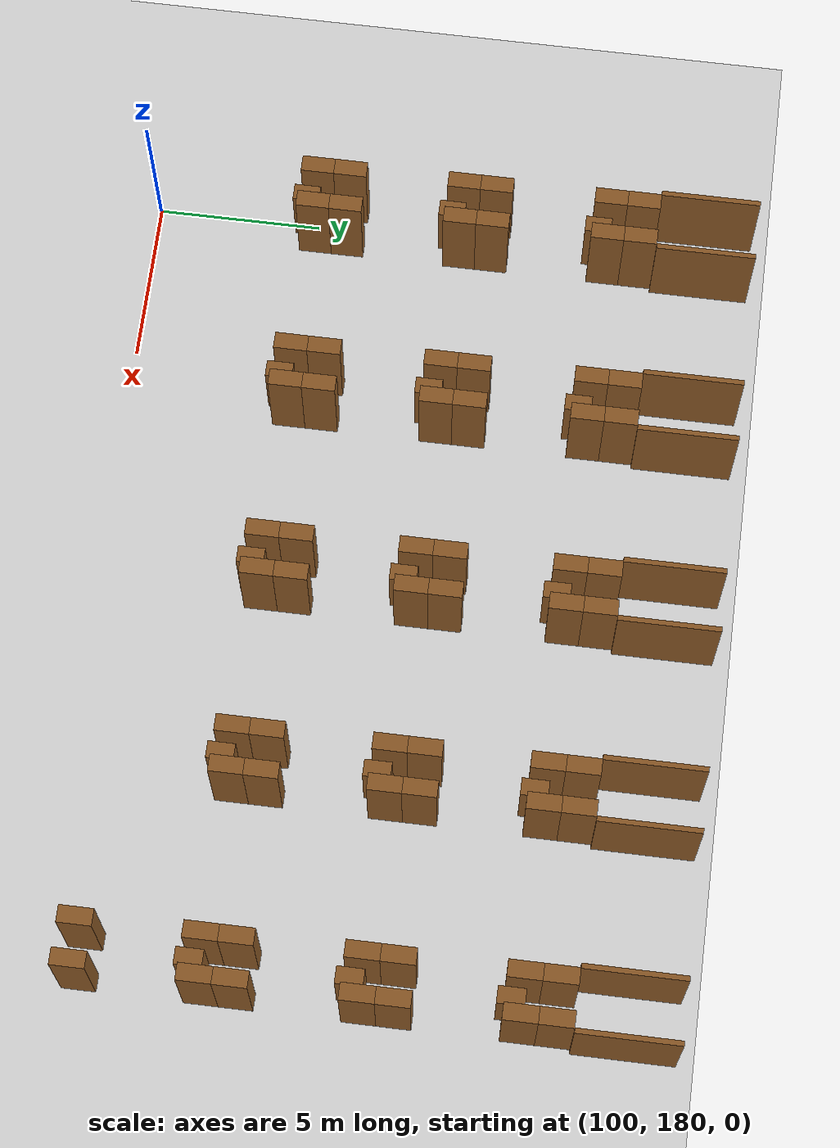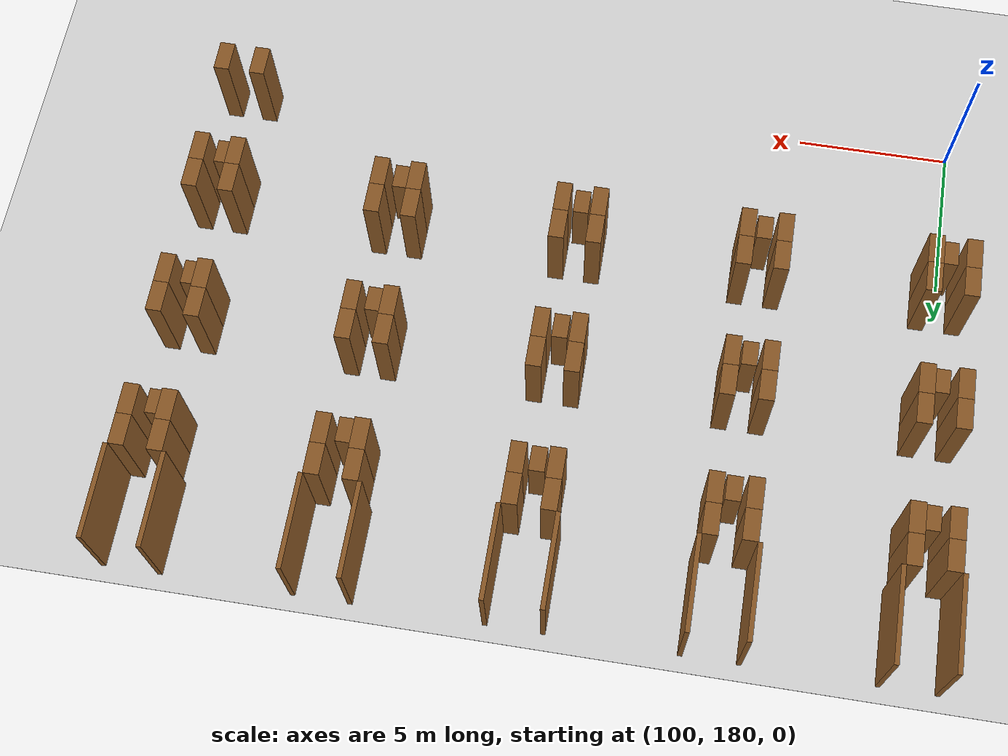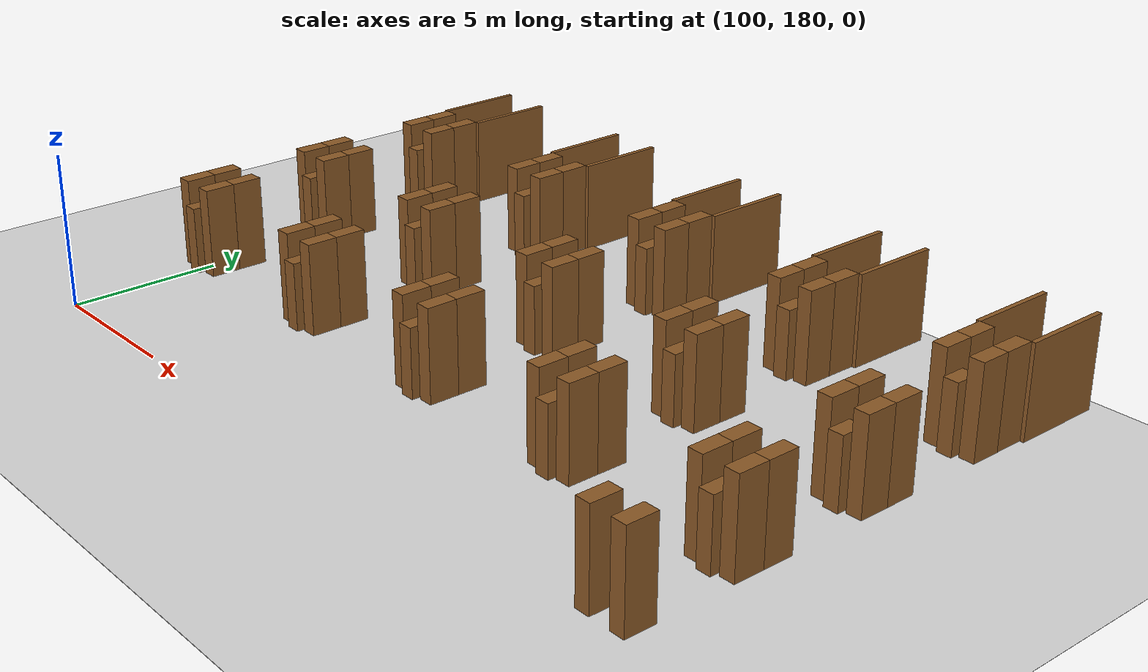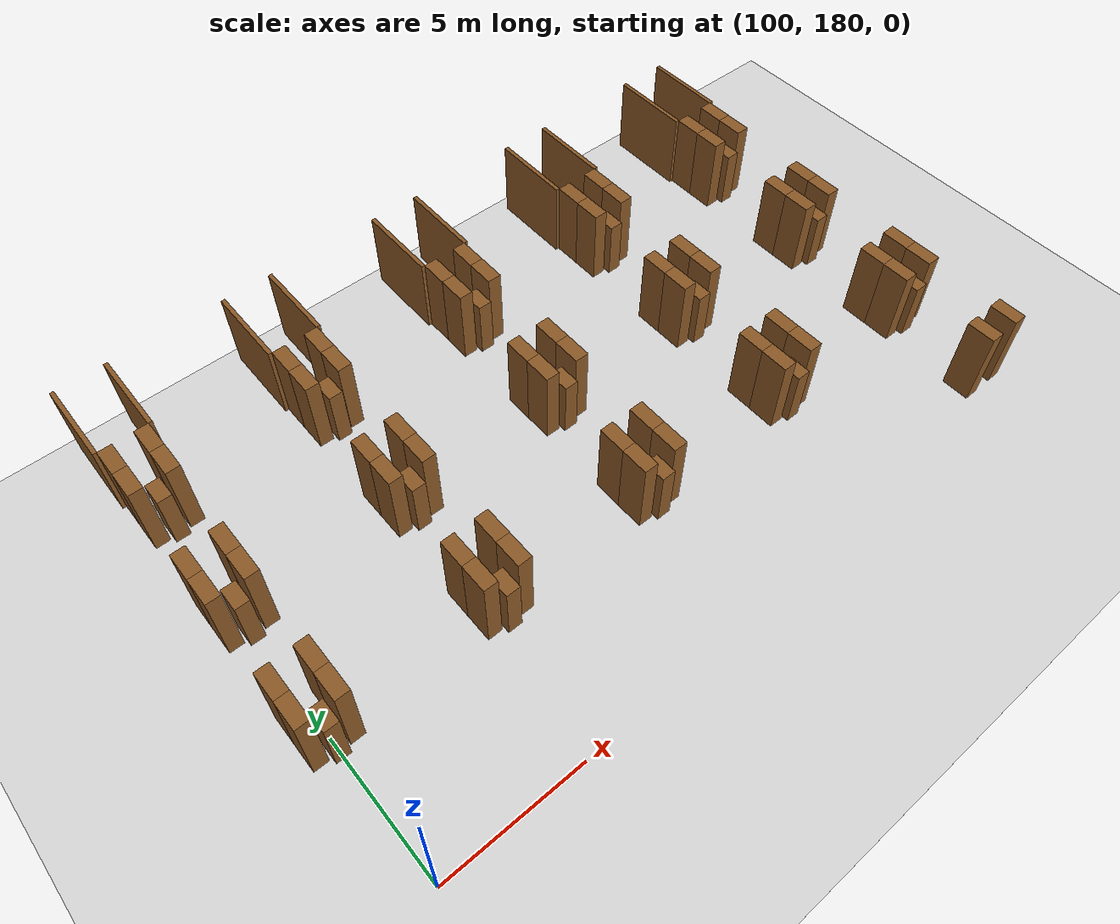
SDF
<sdf version="1.9">
 <world name="realistic_warehouse_150x200m">
  <model name="ground_plane">
   <static>true</static>
   <pose>68.5 102.0 0 0 0 0</pose>
   <link name="ground_link">
    <visual name="ground_visual">
     <geometry><box><size>127.0 194.0 0.01</size></box></geometry>
     <material><ambient>0.85 0.85 0.85 1.0</ambient><diffuse>0.85 0.85 0.85 1.0</diffuse></material>
    </visual>
    <collision name="ground_visual_collision">
     <geometry><box><size>127.0 194.0 0.01</size></box></geometry>
    </collision>
    <collision name="ground_collision">
     <geometry><plane><normal>0 0 1</normal><size>127.0 194.0</size></plane></geometry>
    </collision>
   </link>
  </model>
  <model name="rack_Zone_C_A0_S5_483">
   <static>true</static>
   <pose>99.4 185.0 1.5 0 0 0</pose>
   <link name="rack_Zone_C_A0_S5_483_link">
    <visual name="rack_Zone_C_A0_S5_483_vis">
     <geometry><box><size>0.5 1.0 3.0</size></box></geometry>
     <material><ambient>0.55 0.35 0.15 1.0</ambient><diffuse>0.55 0.35 0.15 1.0</diffuse></material>
    </visual>
    <collision name="rack_Zone_C_A0_S5_483_vis_collision">
     <geometry><box><size>0.5 1.0 3.0</size></box></geometry>
    </collision>
   </link>
  </model>
  <model name="rack_Zone_C_A0_S5_484">
   <static>true</static>
   <pose>99.4 186.0 1.5 0 0 0</pose>
   <link name="rack_Zone_C_A0_S5_484_link">
    <visual name="rack_Zone_C_A0_S5_484_vis">
     <geometry><box><size>0.5 1.0 3.0</size></box></geometry>
     <material><ambient>0.55 0.35 0.15 1.0</ambient><diffuse>0.55 0.35 0.15 1.0</diffuse></material>
    </visual>
    <collision name="rack_Zone_C_A0_S5_484_vis_collision">
     <geometry><box><size>0.5 1.0 3.0</size></box></geometry>
    </collision>
   </link>
  </model>
  <model name="rack_Zone_C_A0_S5_485">
   <static>true</static>
   <pose>100.6 185.0 1.5 0 0 0</pose>
   <link name="rack_Zone_C_A0_S5_485_link">
    <visual name="rack_Zone_C_A0_S5_485_vis">
     <geometry><box><size>0.5 1.0 3.0</size></box></geometry>
     <material><ambient>0.55 0.35 0.15 1.0</ambient><diffuse>0.55 0.35 0.15 1.0</diffuse></material>
    </visual>
    <collision name="rack_Zone_C_A0_S5_485_vis_collision">
     <geometry><box><size>0.5 1.0 3.0</size></box></geometry>
    </collision>
   </link>
  </model>
  <model name="rack_Zone_C_A0_S5_486">
   <static>true</static>
   <pose>100.6 186.0 1.5 0 0 0</pose>
   <link name="rack_Zone_C_A0_S5_486_link">
    <visual name="rack_Zone_C_A0_S5_486_vis">
     <geometry><box><size>0.5 1.0 3.0</size></box></geometry>
     <material><ambient>0.55 0.35 0.15 1.0</ambient><diffuse>0.55 0.35 0.15 1.0</diffuse></material>
    </visual>
    <collision name="rack_Zone_C_A0_S5_486_vis_collision">
     <geometry><box><size>0.5 1.0 3.0</size></box></geometry>
    </collision>
   </link>
  </model>
  <model name="rack_Zone_C_A0_S5_487">
   <static>true</static>
   <pose>100.0 184.7 1.125 0 0 0</pose>
   <link name="rack_Zone_C_A0_S5_487_link">
    <visual name="rack_Zone_C_A0_S5_487_vis">
     <geometry><box><size>0.5 0.8 2.25</size></box></geometry>
     <material><ambient>0.55 0.35 0.15 1.0</ambient><diffuse>0.55 0.35 0.15 1.0</diffuse></material>
    </visual>
    <collision name="rack_Zone_C_A0_S5_487_vis_collision">
     <geometry><box><size>0.5 0.8 2.25</size></box></geometry>
    </collision>
   </link>
  </model>
  <model name="rack_Zone_C_A0_S6_488">
   <static>true</static>
   <pose>99.4 189.5 1.5 0 0 0</pose>
   <link name="rack_Zone_C_A0_S6_488_link">
    <visual name="rack_Zone_C_A0_S6_488_vis">
     <geometry><box><size>0.5 1.0 3.0</size></box></geometry>
     <material><ambient>0.55 0.35 0.15 1.0</ambient><diffuse>0.55 0.35 0.15 1.0</diffuse></material>
    </visual>
    <collision name="rack_Zone_C_A0_S6_488_vis_collision">
     <geometry><box><size>0.5 1.0 3.0</size></box></geometry>
    </collision>
   </link>
  </model>
  <model name="rack_Zone_C_A0_S6_489">
   <static>true</static>
   <pose>99.4 190.5 1.5 0 0 0</pose>
   <link name="rack_Zone_C_A0_S6_489_link">
    <visual name="rack_Zone_C_A0_S6_489_vis">
     <geometry><box><size>0.5 1.0 3.0</size></box></geometry>
     <material><ambient>0.55 0.35 0.15 1.0</ambient><diffuse>0.55 0.35 0.15 1.0</diffuse></material>
    </visual>
    <collision name="rack_Zone_C_A0_S6_489_vis_collision">
     <geometry><box><size>0.5 1.0 3.0</size></box></geometry>
    </collision>
   </link>
  </model>
  <model name="rack_Zone_C_A0_S6_490">
   <static>true</static>
   <pose>100.6 189.5 1.5 0 0 0</pose>
   <link name="rack_Zone_C_A0_S6_490_link">
    <visual name="rack_Zone_C_A0_S6_490_vis">
     <geometry><box><size>0.5 1.0 3.0</size></box></geometry>
     <material><ambient>0.55 0.35 0.15 1.0</ambient><diffuse>0.55 0.35 0.15 1.0</diffuse></material>
    </visual>
    <collision name="rack_Zone_C_A0_S6_490_vis_collision">
     <geometry><box><size>0.5 1.0 3.0</size></box></geometry>
    </collision>
   </link>
  </model>
  <model name="rack_Zone_C_A0_S6_491">
   <static>true</static>
   <pose>100.6 190.5 1.5 0 0 0</pose>
   <link name="rack_Zone_C_A0_S6_491_link">
    <visual name="rack_Zone_C_A0_S6_491_vis">
     <geometry><box><size>0.5 1.0 3.0</size></box></geometry>
     <material><ambient>0.55 0.35 0.15 1.0</ambient><diffuse>0.55 0.35 0.15 1.0</diffuse></material>
    </visual>
    <collision name="rack_Zone_C_A0_S6_491_vis_collision">
     <geometry><box><size>0.5 1.0 3.0</size></box></geometry>
    </collision>
   </link>
  </model>
  <model name="rack_Zone_C_A0_S6_492">
   <static>true</static>
   <pose>100.0 189.2 1.125 0 0 0</pose>
   <link name="rack_Zone_C_A0_S6_492_link">
    <visual name="rack_Zone_C_A0_S6_492_vis">
     <geometry><box><size>0.5 0.8 2.25</size></box></geometry>
     <material><ambient>0.55 0.35 0.15 1.0</ambient><diffuse>0.55 0.35 0.15 1.0</diffuse></material>
    </visual>
    <collision name="rack_Zone_C_A0_S6_492_vis_collision">
     <geometry><box><size>0.5 0.8 2.25</size></box></geometry>
    </collision>
   </link>
  </model>
  <model name="rack_Zone_C_A0_S7_493">
   <static>true</static>
   <pose>99.4 194.0 1.5 0 0 0</pose>
   <link name="rack_Zone_C_A0_S7_493_link">
    <visual name="rack_Zone_C_A0_S7_493_vis">
     <geometry><box><size>0.5 1.0 3.0</size></box></geometry>
     <material><ambient>0.55 0.35 0.15 1.0</ambient><diffuse>0.55 0.35 0.15 1.0</diffuse></material>
    </visual>
    <collision name="rack_Zone_C_A0_S7_493_vis_collision">
     <geometry><box><size>0.5 1.0 3.0</size></box></geometry>
    </collision>
   </link>
  </model>
  <model name="rack_Zone_C_A0_S7_494">
   <static>true</static>
   <pose>99.4 195.0 1.5 0 0 0</pose>
   <link name="rack_Zone_C_A0_S7_494_link">
    <visual name="rack_Zone_C_A0_S7_494_vis">
     <geometry><box><size>0.5 1.0 3.0</size></box></geometry>
     <material><ambient>0.55 0.35 0.15 1.0</ambient><diffuse>0.55 0.35 0.15 1.0</diffuse></material>
    </visual>
    <collision name="rack_Zone_C_A0_S7_494_vis_collision">
     <geometry><box><size>0.5 1.0 3.0</size></box></geometry>
    </collision>
   </link>
  </model>
  <model name="rack_Zone_C_A0_S7_495">
   <static>true</static>
   <pose>100.6 194.0 1.5 0 0 0</pose>
   <link name="rack_Zone_C_A0_S7_495_link">
    <visual name="rack_Zone_C_A0_S7_495_vis">
     <geometry><box><size>0.5 1.0 3.0</size></box></geometry>
     <material><ambient>0.55 0.35 0.15 1.0</ambient><diffuse>0.55 0.35 0.15 1.0</diffuse></material>
    </visual>
    <collision name="rack_Zone_C_A0_S7_495_vis_collision">
     <geometry><box><size>0.5 1.0 3.0</size></box></geometry>
    </collision>
   </link>
  </model>
  <model name="rack_Zone_C_A0_S7_496">
   <static>true</static>
   <pose>100.6 195.0 1.5 0 0 0</pose>
   <link name="rack_Zone_C_A0_S7_496_link">
    <visual name="rack_Zone_C_A0_S7_496_vis">
     <geometry><box><size>0.5 1.0 3.0</size></box></geometry>
     <material><ambient>0.55 0.35 0.15 1.0</ambient><diffuse>0.55 0.35 0.15 1.0</diffuse></material>
    </visual>
    <collision name="rack_Zone_C_A0_S7_496_vis_collision">
     <geometry><box><size>0.5 1.0 3.0</size></box></geometry>
    </collision>
   </link>
  </model>
  <model name="rack_Zone_C_A0_S7_497">
   <static>true</static>
   <pose>100.0 193.7 1.125 0 0 0</pose>
   <link name="rack_Zone_C_A0_S7_497_link">
    <visual name="rack_Zone_C_A0_S7_497_vis">
     <geometry><box><size>0.5 0.8 2.25</size></box></geometry>
     <material><ambient>0.55 0.35 0.15 1.0</ambient><diffuse>0.55 0.35 0.15 1.0</diffuse></material>
    </visual>
    <collision name="rack_Zone_C_A0_S7_497_vis_collision">
     <geometry><box><size>0.5 0.8 2.25</size></box></geometry>
    </collision>
   </link>
  </model>
  <model name="aisle_L_Zone_C_A0_exit_498">
   <static>true</static>
   <pose>99.1 197.0 1.5 0 0 0</pose>
   <link name="aisle_L_Zone_C_A0_exit_498_link">
    <visual name="aisle_L_Zone_C_A0_exit_498_vis">
     <geometry><box><size>0.15 3.0 3.0</size></box></geometry>
     <material><ambient>0.55 0.35 0.15 1.0</ambient><diffuse>0.55 0.35 0.15 1.0</diffuse></material>
    </visual>
    <collision name="aisle_L_Zone_C_A0_exit_498_vis_collision">
     <geometry><box><size>0.15 3.0 3.0</size></box></geometry>
    </collision>
   </link>
  </model>
  <model name="aisle_R_Zone_C_A0_exit_499">
   <static>true</static>
   <pose>100.9 197.0 1.5 0 0 0</pose>
   <link name="aisle_R_Zone_C_A0_exit_499_link">
    <visual name="aisle_R_Zone_C_A0_exit_499_vis">
     <geometry><box><size>0.15 3.0 3.0</size></box></geometry>
     <material><ambient>0.55 0.35 0.15 1.0</ambient><diffuse>0.55 0.35 0.15 1.0</diffuse></material>
    </visual>
    <collision name="aisle_R_Zone_C_A0_exit_499_vis_collision">
     <geometry><box><size>0.15 3.0 3.0</size></box></geometry>
    </collision>
   </link>
  </model>
  <model name="rack_Zone_C_A1_S5_527">
   <static>true</static>
   <pose>105.4 185.0 1.5 0 0 0</pose>
   <link name="rack_Zone_C_A1_S5_527_link">
    <visual name="rack_Zone_C_A1_S5_527_vis">
     <geometry><box><size>0.5 1.0 3.0</size></box></geometry>
     <material><ambient>0.55 0.35 0.15 1.0</ambient><diffuse>0.55 0.35 0.15 1.0</diffuse></material>
    </visual>
    <collision name="rack_Zone_C_A1_S5_527_vis_collision">
     <geometry><box><size>0.5 1.0 3.0</size></box></geometry>
    </collision>
   </link>
  </model>
  <model name="rack_Zone_C_A1_S5_528">
   <static>true</static>
   <pose>105.4 186.0 1.5 0 0 0</pose>
   <link name="rack_Zone_C_A1_S5_528_link">
    <visual name="rack_Zone_C_A1_S5_528_vis">
     <geometry><box><size>0.5 1.0 3.0</size></box></geometry>
     <material><ambient>0.55 0.35 0.15 1.0</ambient><diffuse>0.55 0.35 0.15 1.0</diffuse></material>
    </visual>
    <collision name="rack_Zone_C_A1_S5_528_vis_collision">
     <geometry><box><size>0.5 1.0 3.0</size></box></geometry>
    </collision>
   </link>
  </model>
  <model name="rack_Zone_C_A1_S5_529">
   <static>true</static>
   <pose>106.6 185.0 1.5 0 0 0</pose>
   <link name="rack_Zone_C_A1_S5_529_link">
    <visual name="rack_Zone_C_A1_S5_529_vis">
     <geometry><box><size>0.5 1.0 3.0</size></box></geometry>
     <material><ambient>0.55 0.35 0.15 1.0</ambient><diffuse>0.55 0.35 0.15 1.0</diffuse></material>
    </visual>
    <collision name="rack_Zone_C_A1_S5_529_vis_collision">
     <geometry><box><size>0.5 1.0 3.0</size></box></geometry>
    </collision>
   </link>
  </model>
  <model name="rack_Zone_C_A1_S5_530">
   <static>true</static>
   <pose>106.6 186.0 1.5 0 0 0</pose>
   <link name="rack_Zone_C_A1_S5_530_link">
    <visual name="rack_Zone_C_A1_S5_530_vis">
     <geometry><box><size>0.5 1.0 3.0</size></box></geometry>
     <material><ambient>0.55 0.35 0.15 1.0</ambient><diffuse>0.55 0.35 0.15 1.0</diffuse></material>
    </visual>
    <collision name="rack_Zone_C_A1_S5_530_vis_collision">
     <geometry><box><size>0.5 1.0 3.0</size></box></geometry>
    </collision>
   </link>
  </model>
  <model name="rack_Zone_C_A1_S5_531">
   <static>true</static>
   <pose>106.0 184.7 1.125 0 0 0</pose>
   <link name="rack_Zone_C_A1_S5_531_link">
    <visual name="rack_Zone_C_A1_S5_531_vis">
     <geometry><box><size>0.5 0.8 2.25</size></box></geometry>
     <material><ambient>0.55 0.35 0.15 1.0</ambient><diffuse>0.55 0.35 0.15 1.0</diffuse></material>
    </visual>
    <collision name="rack_Zone_C_A1_S5_531_vis_collision">
     <geometry><box><size>0.5 0.8 2.25</size></box></geometry>
    </collision>
   </link>
  </model>
  <model name="rack_Zone_C_A1_S6_532">
   <static>true</static>
   <pose>105.4 189.5 1.5 0 0 0</pose>
   <link name="rack_Zone_C_A1_S6_532_link">
    <visual name="rack_Zone_C_A1_S6_532_vis">
     <geometry><box><size>0.5 1.0 3.0</size></box></geometry>
     <material><ambient>0.55 0.35 0.15 1.0</ambient><diffuse>0.55 0.35 0.15 1.0</diffuse></material>
    </visual>
    <collision name="rack_Zone_C_A1_S6_532_vis_collision">
     <geometry><box><size>0.5 1.0 3.0</size></box></geometry>
    </collision>
   </link>
  </model>
  <model name="rack_Zone_C_A1_S6_533">
   <static>true</static>
   <pose>105.4 190.5 1.5 0 0 0</pose>
   <link name="rack_Zone_C_A1_S6_533_link">
    <visual name="rack_Zone_C_A1_S6_533_vis">
     <geometry><box><size>0.5 1.0 3.0</size></box></geometry>
     <material><ambient>0.55 0.35 0.15 1.0</ambient><diffuse>0.55 0.35 0.15 1.0</diffuse></material>
    </visual>
    <collision name="rack_Zone_C_A1_S6_533_vis_collision">
     <geometry><box><size>0.5 1.0 3.0</size></box></geometry>
    </collision>
   </link>
  </model>
  <model name="rack_Zone_C_A1_S6_534">
   <static>true</static>
   <pose>106.6 189.5 1.5 0 0 0</pose>
   <link name="rack_Zone_C_A1_S6_534_link">
    <visual name="rack_Zone_C_A1_S6_534_vis">
     <geometry><box><size>0.5 1.0 3.0</size></box></geometry>
     <material><ambient>0.55 0.35 0.15 1.0</ambient><diffuse>0.55 0.35 0.15 1.0</diffuse></material>
    </visual>
    <collision name="rack_Zone_C_A1_S6_534_vis_collision">
     <geometry><box><size>0.5 1.0 3.0</size></box></geometry>
    </collision>
   </link>
  </model>
  <model name="rack_Zone_C_A1_S6_535">
   <static>true</static>
   <pose>106.6 190.5 1.5 0 0 0</pose>
   <link name="rack_Zone_C_A1_S6_535_link">
    <visual name="rack_Zone_C_A1_S6_535_vis">
     <geometry><box><size>0.5 1.0 3.0</size></box></geometry>
     <material><ambient>0.55 0.35 0.15 1.0</ambient><diffuse>0.55 0.35 0.15 1.0</diffuse></material>
    </visual>
    <collision name="rack_Zone_C_A1_S6_535_vis_collision">
     <geometry><box><size>0.5 1.0 3.0</size></box></geometry>
    </collision>
   </link>
  </model>
  <model name="rack_Zone_C_A1_S6_536">
   <static>true</static>
   <pose>106.0 189.2 1.125 0 0 0</pose>
   <link name="rack_Zone_C_A1_S6_536_link">
    <visual name="rack_Zone_C_A1_S6_536_vis">
     <geometry><box><size>0.5 0.8 2.25</size></box></geometry>
     <material><ambient>0.55 0.35 0.15 1.0</ambient><diffuse>0.55 0.35 0.15 1.0</diffuse></material>
    </visual>
    <collision name="rack_Zone_C_A1_S6_536_vis_collision">
     <geometry><box><size>0.5 0.8 2.25</size></box></geometry>
    </collision>
   </link>
  </model>
  <model name="rack_Zone_C_A1_S7_537">
   <static>true</static>
   <pose>105.4 194.0 1.5 0 0 0</pose>
   <link name="rack_Zone_C_A1_S7_537_link">
    <visual name="rack_Zone_C_A1_S7_537_vis">
     <geometry><box><size>0.5 1.0 3.0</size></box></geometry>
     <material><ambient>0.55 0.35 0.15 1.0</ambient><diffuse>0.55 0.35 0.15 1.0</diffuse></material>
    </visual>
    <collision name="rack_Zone_C_A1_S7_537_vis_collision">
     <geometry><box><size>0.5 1.0 3.0</size></box></geometry>
    </collision>
   </link>
  </model>
  <model name="rack_Zone_C_A1_S7_538">
   <static>true</static>
   <pose>105.4 195.0 1.5 0 0 0</pose>
   <link name="rack_Zone_C_A1_S7_538_link">
    <visual name="rack_Zone_C_A1_S7_538_vis">
     <geometry><box><size>0.5 1.0 3.0</size></box></geometry>
     <material><ambient>0.55 0.35 0.15 1.0</ambient><diffuse>0.55 0.35 0.15 1.0</diffuse></material>
    </visual>
    <collision name="rack_Zone_C_A1_S7_538_vis_collision">
     <geometry><box><size>0.5 1.0 3.0</size></box></geometry>
    </collision>
   </link>
  </model>
  <model name="rack_Zone_C_A1_S7_539">
   <static>true</static>
   <pose>106.6 194.0 1.5 0 0 0</pose>
   <link name="rack_Zone_C_A1_S7_539_link">
    <visual name="rack_Zone_C_A1_S7_539_vis">
     <geometry><box><size>0.5 1.0 3.0</size></box></geometry>
     <material><ambient>0.55 0.35 0.15 1.0</ambient><diffuse>0.55 0.35 0.15 1.0</diffuse></material>
    </visual>
    <collision name="rack_Zone_C_A1_S7_539_vis_collision">
     <geometry><box><size>0.5 1.0 3.0</size></box></geometry>
    </collision>
   </link>
  </model>
  <model name="rack_Zone_C_A1_S7_540">
   <static>true</static>
   <pose>106.6 195.0 1.5 0 0 0</pose>
   <link name="rack_Zone_C_A1_S7_540_link">
    <visual name="rack_Zone_C_A1_S7_540_vis">
     <geometry><box><size>0.5 1.0 3.0</size></box></geometry>
     <material><ambient>0.55 0.35 0.15 1.0</ambient><diffuse>0.55 0.35 0.15 1.0</diffuse></material>
    </visual>
    <collision name="rack_Zone_C_A1_S7_540_vis_collision">
     <geometry><box><size>0.5 1.0 3.0</size></box></geometry>
    </collision>
   </link>
  </model>
  <model name="rack_Zone_C_A1_S7_541">
   <static>true</static>
   <pose>106.0 193.7 1.125 0 0 0</pose>
   <link name="rack_Zone_C_A1_S7_541_link">
    <visual name="rack_Zone_C_A1_S7_541_vis">
     <geometry><box><size>0.5 0.8 2.25</size></box></geometry>
     <material><ambient>0.55 0.35 0.15 1.0</ambient><diffuse>0.55 0.35 0.15 1.0</diffuse></material>
    </visual>
    <collision name="rack_Zone_C_A1_S7_541_vis_collision">
     <geometry><box><size>0.5 0.8 2.25</size></box></geometry>
    </collision>
   </link>
  </model>
  <model name="aisle_L_Zone_C_A1_exit_542">
   <static>true</static>
   <pose>105.1 197.0 1.5 0 0 0</pose>
   <link name="aisle_L_Zone_C_A1_exit_542_link">
    <visual name="aisle_L_Zone_C_A1_exit_542_vis">
     <geometry><box><size>0.15 3.0 3.0</size></box></geometry>
     <material><ambient>0.55 0.35 0.15 1.0</ambient><diffuse>0.55 0.35 0.15 1.0</diffuse></material>
    </visual>
    <collision name="aisle_L_Zone_C_A1_exit_542_vis_collision">
     <geometry><box><size>0.15 3.0 3.0</size></box></geometry>
    </collision>
   </link>
  </model>
  <model name="aisle_R_Zone_C_A1_exit_543">
   <static>true</static>
   <pose>106.9 197.0 1.5 0 0 0</pose>
   <link name="aisle_R_Zone_C_A1_exit_543_link">
    <visual name="aisle_R_Zone_C_A1_exit_543_vis">
     <geometry><box><size>0.15 3.0 3.0</size></box></geometry>
     <material><ambient>0.55 0.35 0.15 1.0</ambient><diffuse>0.55 0.35 0.15 1.0</diffuse></material>
    </visual>
    <collision name="aisle_R_Zone_C_A1_exit_543_vis_collision">
     <geometry><box><size>0.15 3.0 3.0</size></box></geometry>
    </collision>
   </link>
  </model>
  <model name="rack_Zone_C_A2_S5_571">
   <static>true</static>
   <pose>111.4 185.0 1.5 0 0 0</pose>
   <link name="rack_Zone_C_A2_S5_571_link">
    <visual name="rack_Zone_C_A2_S5_571_vis">
     <geometry><box><size>0.5 1.0 3.0</size></box></geometry>
     <material><ambient>0.55 0.35 0.15 1.0</ambient><diffuse>0.55 0.35 0.15 1.0</diffuse></material>
    </visual>
    <collision name="rack_Zone_C_A2_S5_571_vis_collision">
     <geometry><box><size>0.5 1.0 3.0</size></box></geometry>
    </collision>
   </link>
  </model>
  <model name="rack_Zone_C_A2_S5_572">
   <static>true</static>
   <pose>111.4 186.0 1.5 0 0 0</pose>
   <link name="rack_Zone_C_A2_S5_572_link">
    <visual name="rack_Zone_C_A2_S5_572_vis">
     <geometry><box><size>0.5 1.0 3.0</size></box></geometry>
     <material><ambient>0.55 0.35 0.15 1.0</ambient><diffuse>0.55 0.35 0.15 1.0</diffuse></material>
    </visual>
    <collision name="rack_Zone_C_A2_S5_572_vis_collision">
     <geometry><box><size>0.5 1.0 3.0</size></box></geometry>
    </collision>
   </link>
  </model>
  <model name="rack_Zone_C_A2_S5_573">
   <static>true</static>
   <pose>112.6 185.0 1.5 0 0 0</pose>
   <link name="rack_Zone_C_A2_S5_573_link">
    <visual name="rack_Zone_C_A2_S5_573_vis">
     <geometry><box><size>0.5 1.0 3.0</size></box></geometry>
     <material><ambient>0.55 0.35 0.15 1.0</ambient><diffuse>0.55 0.35 0.15 1.0</diffuse></material>
    </visual>
    <collision name="rack_Zone_C_A2_S5_573_vis_collision">
     <geometry><box><size>0.5 1.0 3.0</size></box></geometry>
    </collision>
   </link>
  </model>
  <model name="rack_Zone_C_A2_S5_574">
   <static>true</static>
   <pose>112.6 186.0 1.5 0 0 0</pose>
   <link name="rack_Zone_C_A2_S5_574_link">
    <visual name="rack_Zone_C_A2_S5_574_vis">
     <geometry><box><size>0.5 1.0 3.0</size></box></geometry>
     <material><ambient>0.55 0.35 0.15 1.0</ambient><diffuse>0.55 0.35 0.15 1.0</diffuse></material>
    </visual>
    <collision name="rack_Zone_C_A2_S5_574_vis_collision">
     <geometry><box><size>0.5 1.0 3.0</size></box></geometry>
    </collision>
   </link>
  </model>
  <model name="rack_Zone_C_A2_S5_575">
   <static>true</static>
   <pose>112.0 184.7 1.125 0 0 0</pose>
   <link name="rack_Zone_C_A2_S5_575_link">
    <visual name="rack_Zone_C_A2_S5_575_vis">
     <geometry><box><size>0.5 0.8 2.25</size></box></geometry>
     <material><ambient>0.55 0.35 0.15 1.0</ambient><diffuse>0.55 0.35 0.15 1.0</diffuse></material>
    </visual>
    <collision name="rack_Zone_C_A2_S5_575_vis_collision">
     <geometry><box><size>0.5 0.8 2.25</size></box></geometry>
    </collision>
   </link>
  </model>
  <model name="rack_Zone_C_A2_S6_576">
   <static>true</static>
   <pose>111.4 189.5 1.5 0 0 0</pose>
   <link name="rack_Zone_C_A2_S6_576_link">
    <visual name="rack_Zone_C_A2_S6_576_vis">
     <geometry><box><size>0.5 1.0 3.0</size></box></geometry>
     <material><ambient>0.55 0.35 0.15 1.0</ambient><diffuse>0.55 0.35 0.15 1.0</diffuse></material>
    </visual>
    <collision name="rack_Zone_C_A2_S6_576_vis_collision">
     <geometry><box><size>0.5 1.0 3.0</size></box></geometry>
    </collision>
   </link>
  </model>
  <model name="rack_Zone_C_A2_S6_577">
   <static>true</static>
   <pose>111.4 190.5 1.5 0 0 0</pose>
   <link name="rack_Zone_C_A2_S6_577_link">
    <visual name="rack_Zone_C_A2_S6_577_vis">
     <geometry><box><size>0.5 1.0 3.0</size></box></geometry>
     <material><ambient>0.55 0.35 0.15 1.0</ambient><diffuse>0.55 0.35 0.15 1.0</diffuse></material>
    </visual>
    <collision name="rack_Zone_C_A2_S6_577_vis_collision">
     <geometry><box><size>0.5 1.0 3.0</size></box></geometry>
    </collision>
   </link>
  </model>
  <model name="rack_Zone_C_A2_S6_578">
   <static>true</static>
   <pose>112.6 189.5 1.5 0 0 0</pose>
   <link name="rack_Zone_C_A2_S6_578_link">
    <visual name="rack_Zone_C_A2_S6_578_vis">
     <geometry><box><size>0.5 1.0 3.0</size></box></geometry>
     <material><ambient>0.55 0.35 0.15 1.0</ambient><diffuse>0.55 0.35 0.15 1.0</diffuse></material>
    </visual>
    <collision name="rack_Zone_C_A2_S6_578_vis_collision">
     <geometry><box><size>0.5 1.0 3.0</size></box></geometry>
    </collision>
   </link>
  </model>
  <model name="rack_Zone_C_A2_S6_579">
   <static>true</static>
   <pose>112.6 190.5 1.5 0 0 0</pose>
   <link name="rack_Zone_C_A2_S6_579_link">
    <visual name="rack_Zone_C_A2_S6_579_vis">
     <geometry><box><size>0.5 1.0 3.0</size></box></geometry>
     <material><ambient>0.55 0.35 0.15 1.0</ambient><diffuse>0.55 0.35 0.15 1.0</diffuse></material>
    </visual>
    <collision name="rack_Zone_C_A2_S6_579_vis_collision">
     <geometry><box><size>0.5 1.0 3.0</size></box></geometry>
    </collision>
   </link>
  </model>
  <model name="rack_Zone_C_A2_S6_580">
   <static>true</static>
   <pose>112.0 189.2 1.125 0 0 0</pose>
   <link name="rack_Zone_C_A2_S6_580_link">
    <visual name="rack_Zone_C_A2_S6_580_vis">
     <geometry><box><size>0.5 0.8 2.25</size></box></geometry>
     <material><ambient>0.55 0.35 0.15 1.0</ambient><diffuse>0.55 0.35 0.15 1.0</diffuse></material>
    </visual>
    <collision name="rack_Zone_C_A2_S6_580_vis_collision">
     <geometry><box><size>0.5 0.8 2.25</size></box></geometry>
    </collision>
   </link>
  </model>
  <model name="rack_Zone_C_A2_S7_581">
   <static>true</static>
   <pose>111.4 194.0 1.5 0 0 0</pose>
   <link name="rack_Zone_C_A2_S7_581_link">
    <visual name="rack_Zone_C_A2_S7_581_vis">
     <geometry><box><size>0.5 1.0 3.0</size></box></geometry>
     <material><ambient>0.55 0.35 0.15 1.0</ambient><diffuse>0.55 0.35 0.15 1.0</diffuse></material>
    </visual>
    <collision name="rack_Zone_C_A2_S7_581_vis_collision">
     <geometry><box><size>0.5 1.0 3.0</size></box></geometry>
    </collision>
   </link>
  </model>
  <model name="rack_Zone_C_A2_S7_582">
   <static>true</static>
   <pose>111.4 195.0 1.5 0 0 0</pose>
   <link name="rack_Zone_C_A2_S7_582_link">
    <visual name="rack_Zone_C_A2_S7_582_vis">
     <geometry><box><size>0.5 1.0 3.0</size></box></geometry>
     <material><ambient>0.55 0.35 0.15 1.0</ambient><diffuse>0.55 0.35 0.15 1.0</diffuse></material>
    </visual>
    <collision name="rack_Zone_C_A2_S7_582_vis_collision">
     <geometry><box><size>0.5 1.0 3.0</size></box></geometry>
    </collision>
   </link>
  </model>
  <model name="rack_Zone_C_A2_S7_583">
   <static>true</static>
   <pose>112.6 194.0 1.5 0 0 0</pose>
   <link name="rack_Zone_C_A2_S7_583_link">
    <visual name="rack_Zone_C_A2_S7_583_vis">
     <geometry><box><size>0.5 1.0 3.0</size></box></geometry>
     <material><ambient>0.55 0.35 0.15 1.0</ambient><diffuse>0.55 0.35 0.15 1.0</diffuse></material>
    </visual>
    <collision name="rack_Zone_C_A2_S7_583_vis_collision">
     <geometry><box><size>0.5 1.0 3.0</size></box></geometry>
    </collision>
   </link>
  </model>
  <model name="rack_Zone_C_A2_S7_584">
   <static>true</static>
   <pose>112.6 195.0 1.5 0 0 0</pose>
   <link name="rack_Zone_C_A2_S7_584_link">
    <visual name="rack_Zone_C_A2_S7_584_vis">
     <geometry><box><size>0.5 1.0 3.0</size></box></geometry>
     <material><ambient>0.55 0.35 0.15 1.0</ambient><diffuse>0.55 0.35 0.15 1.0</diffuse></material>
    </visual>
    <collision name="rack_Zone_C_A2_S7_584_vis_collision">
     <geometry><box><size>0.5 1.0 3.0</size></box></geometry>
    </collision>
   </link>
  </model>
  <model name="rack_Zone_C_A2_S7_585">
   <static>true</static>
   <pose>112.0 193.7 1.125 0 0 0</pose>
   <link name="rack_Zone_C_A2_S7_585_link">
    <visual name="rack_Zone_C_A2_S7_585_vis">
     <geometry><box><size>0.5 0.8 2.25</size></box></geometry>
     <material><ambient>0.55 0.35 0.15 1.0</ambient><diffuse>0.55 0.35 0.15 1.0</diffuse></material>
    </visual>
    <collision name="rack_Zone_C_A2_S7_585_vis_collision">
     <geometry><box><size>0.5 0.8 2.25</size></box></geometry>
    </collision>
   </link>
  </model>
  <model name="aisle_L_Zone_C_A2_exit_586">
   <static>true</static>
   <pose>111.1 197.0 1.5 0 0 0</pose>
   <link name="aisle_L_Zone_C_A2_exit_586_link">
    <visual name="aisle_L_Zone_C_A2_exit_586_vis">
     <geometry><box><size>0.15 3.0 3.0</size></box></geometry>
     <material><ambient>0.55 0.35 0.15 1.0</ambient><diffuse>0.55 0.35 0.15 1.0</diffuse></material>
    </visual>
    <collision name="aisle_L_Zone_C_A2_exit_586_vis_collision">
     <geometry><box><size>0.15 3.0 3.0</size></box></geometry>
    </collision>
   </link>
  </model>
  <model name="aisle_R_Zone_C_A2_exit_587">
   <static>true</static>
   <pose>112.9 197.0 1.5 0 0 0</pose>
   <link name="aisle_R_Zone_C_A2_exit_587_link">
    <visual name="aisle_R_Zone_C_A2_exit_587_vis">
     <geometry><box><size>0.15 3.0 3.0</size></box></geometry>
     <material><ambient>0.55 0.35 0.15 1.0</ambient><diffuse>0.55 0.35 0.15 1.0</diffuse></material>
    </visual>
    <collision name="aisle_R_Zone_C_A2_exit_587_vis_collision">
     <geometry><box><size>0.15 3.0 3.0</size></box></geometry>
    </collision>
   </link>
  </model>
  <model name="rack_Zone_C_A3_S5_615">
   <static>true</static>
   <pose>117.4 185.0 1.5 0 0 0</pose>
   <link name="rack_Zone_C_A3_S5_615_link">
    <visual name="rack_Zone_C_A3_S5_615_vis">
     <geometry><box><size>0.5 1.0 3.0</size></box></geometry>
     <material><ambient>0.55 0.35 0.15 1.0</ambient><diffuse>0.55 0.35 0.15 1.0</diffuse></material>
    </visual>
    <collision name="rack_Zone_C_A3_S5_615_vis_collision">
     <geometry><box><size>0.5 1.0 3.0</size></box></geometry>
    </collision>
   </link>
  </model>
  <model name="rack_Zone_C_A3_S5_616">
   <static>true</static>
   <pose>117.4 186.0 1.5 0 0 0</pose>
   <link name="rack_Zone_C_A3_S5_616_link">
    <visual name="rack_Zone_C_A3_S5_616_vis">
     <geometry><box><size>0.5 1.0 3.0</size></box></geometry>
     <material><ambient>0.55 0.35 0.15 1.0</ambient><diffuse>0.55 0.35 0.15 1.0</diffuse></material>
    </visual>
    <collision name="rack_Zone_C_A3_S5_616_vis_collision">
     <geometry><box><size>0.5 1.0 3.0</size></box></geometry>
    </collision>
   </link>
  </model>
  <model name="rack_Zone_C_A3_S5_617">
   <static>true</static>
   <pose>118.6 185.0 1.5 0 0 0</pose>
   <link name="rack_Zone_C_A3_S5_617_link">
    <visual name="rack_Zone_C_A3_S5_617_vis">
     <geometry><box><size>0.5 1.0 3.0</size></box></geometry>
     <material><ambient>0.55 0.35 0.15 1.0</ambient><diffuse>0.55 0.35 0.15 1.0</diffuse></material>
    </visual>
    <collision name="rack_Zone_C_A3_S5_617_vis_collision">
     <geometry><box><size>0.5 1.0 3.0</size></box></geometry>
    </collision>
   </link>
  </model>
  <model name="rack_Zone_C_A3_S5_618">
   <static>true</static>
   <pose>118.6 186.0 1.5 0 0 0</pose>
   <link name="rack_Zone_C_A3_S5_618_link">
    <visual name="rack_Zone_C_A3_S5_618_vis">
     <geometry><box><size>0.5 1.0 3.0</size></box></geometry>
     <material><ambient>0.55 0.35 0.15 1.0</ambient><diffuse>0.55 0.35 0.15 1.0</diffuse></material>
    </visual>
    <collision name="rack_Zone_C_A3_S5_618_vis_collision">
     <geometry><box><size>0.5 1.0 3.0</size></box></geometry>
    </collision>
   </link>
  </model>
  <model name="rack_Zone_C_A3_S5_619">
   <static>true</static>
   <pose>118.0 184.7 1.125 0 0 0</pose>
   <link name="rack_Zone_C_A3_S5_619_link">
    <visual name="rack_Zone_C_A3_S5_619_vis">
     <geometry><box><size>0.5 0.8 2.25</size></box></geometry>
     <material><ambient>0.55 0.35 0.15 1.0</ambient><diffuse>0.55 0.35 0.15 1.0</diffuse></material>
    </visual>
    <collision name="rack_Zone_C_A3_S5_619_vis_collision">
     <geometry><box><size>0.5 0.8 2.25</size></box></geometry>
    </collision>
   </link>
  </model>
  <model name="rack_Zone_C_A3_S6_620">
   <static>true</static>
   <pose>117.4 189.5 1.5 0 0 0</pose>
   <link name="rack_Zone_C_A3_S6_620_link">
    <visual name="rack_Zone_C_A3_S6_620_vis">
     <geometry><box><size>0.5 1.0 3.0</size></box></geometry>
     <material><ambient>0.55 0.35 0.15 1.0</ambient><diffuse>0.55 0.35 0.15 1.0</diffuse></material>
    </visual>
    <collision name="rack_Zone_C_A3_S6_620_vis_collision">
     <geometry><box><size>0.5 1.0 3.0</size></box></geometry>
    </collision>
   </link>
  </model>
  <model name="rack_Zone_C_A3_S6_621">
   <static>true</static>
   <pose>117.4 190.5 1.5 0 0 0</pose>
   <link name="rack_Zone_C_A3_S6_621_link">
    <visual name="rack_Zone_C_A3_S6_621_vis">
     <geometry><box><size>0.5 1.0 3.0</size></box></geometry>
     <material><ambient>0.55 0.35 0.15 1.0</ambient><diffuse>0.55 0.35 0.15 1.0</diffuse></material>
    </visual>
    <collision name="rack_Zone_C_A3_S6_621_vis_collision">
     <geometry><box><size>0.5 1.0 3.0</size></box></geometry>
    </collision>
   </link>
  </model>
  <model name="rack_Zone_C_A3_S6_622">
   <static>true</static>
   <pose>118.6 189.5 1.5 0 0 0</pose>
   <link name="rack_Zone_C_A3_S6_622_link">
    <visual name="rack_Zone_C_A3_S6_622_vis">
     <geometry><box><size>0.5 1.0 3.0</size></box></geometry>
     <material><ambient>0.55 0.35 0.15 1.0</ambient><diffuse>0.55 0.35 0.15 1.0</diffuse></material>
    </visual>
    <collision name="rack_Zone_C_A3_S6_622_vis_collision">
     <geometry><box><size>0.5 1.0 3.0</size></box></geometry>
    </collision>
   </link>
  </model>
  <model name="rack_Zone_C_A3_S6_623">
   <static>true</static>
   <pose>118.6 190.5 1.5 0 0 0</pose>
   <link name="rack_Zone_C_A3_S6_623_link">
    <visual name="rack_Zone_C_A3_S6_623_vis">
     <geometry><box><size>0.5 1.0 3.0</size></box></geometry>
     <material><ambient>0.55 0.35 0.15 1.0</ambient><diffuse>0.55 0.35 0.15 1.0</diffuse></material>
    </visual>
    <collision name="rack_Zone_C_A3_S6_623_vis_collision">
     <geometry><box><size>0.5 1.0 3.0</size></box></geometry>
    </collision>
   </link>
  </model>
  <model name="rack_Zone_C_A3_S6_624">
   <static>true</static>
   <pose>118.0 189.2 1.125 0 0 0</pose>
   <link name="rack_Zone_C_A3_S6_624_link">
    <visual name="rack_Zone_C_A3_S6_624_vis">
     <geometry><box><size>0.5 0.8 2.25</size></box></geometry>
     <material><ambient>0.55 0.35 0.15 1.0</ambient><diffuse>0.55 0.35 0.15 1.0</diffuse></material>
    </visual>
    <collision name="rack_Zone_C_A3_S6_624_vis_collision">
     <geometry><box><size>0.5 0.8 2.25</size></box></geometry>
    </collision>
   </link>
  </model>
  <model name="rack_Zone_C_A3_S7_625">
   <static>true</static>
   <pose>117.4 194.0 1.5 0 0 0</pose>
   <link name="rack_Zone_C_A3_S7_625_link">
    <visual name="rack_Zone_C_A3_S7_625_vis">
     <geometry><box><size>0.5 1.0 3.0</size></box></geometry>
     <material><ambient>0.55 0.35 0.15 1.0</ambient><diffuse>0.55 0.35 0.15 1.0</diffuse></material>
    </visual>
    <collision name="rack_Zone_C_A3_S7_625_vis_collision">
     <geometry><box><size>0.5 1.0 3.0</size></box></geometry>
    </collision>
   </link>
  </model>
  <model name="rack_Zone_C_A3_S7_626">
   <static>true</static>
   <pose>117.4 195.0 1.5 0 0 0</pose>
   <link name="rack_Zone_C_A3_S7_626_link">
    <visual name="rack_Zone_C_A3_S7_626_vis">
     <geometry><box><size>0.5 1.0 3.0</size></box></geometry>
     <material><ambient>0.55 0.35 0.15 1.0</ambient><diffuse>0.55 0.35 0.15 1.0</diffuse></material>
    </visual>
    <collision name="rack_Zone_C_A3_S7_626_vis_collision">
     <geometry><box><size>0.5 1.0 3.0</size></box></geometry>
    </collision>
   </link>
  </model>
  <model name="rack_Zone_C_A3_S7_627">
   <static>true</static>
   <pose>118.6 194.0 1.5 0 0 0</pose>
   <link name="rack_Zone_C_A3_S7_627_link">
    <visual name="rack_Zone_C_A3_S7_627_vis">
     <geometry><box><size>0.5 1.0 3.0</size></box></geometry>
     <material><ambient>0.55 0.35 0.15 1.0</ambient><diffuse>0.55 0.35 0.15 1.0</diffuse></material>
    </visual>
    <collision name="rack_Zone_C_A3_S7_627_vis_collision">
     <geometry><box><size>0.5 1.0 3.0</size></box></geometry>
    </collision>
   </link>
  </model>
  <model name="rack_Zone_C_A3_S7_628">
   <static>true</static>
   <pose>118.6 195.0 1.5 0 0 0</pose>
   <link name="rack_Zone_C_A3_S7_628_link">
    <visual name="rack_Zone_C_A3_S7_628_vis">
     <geometry><box><size>0.5 1.0 3.0</size></box></geometry>
     <material><ambient>0.55 0.35 0.15 1.0</ambient><diffuse>0.55 0.35 0.15 1.0</diffuse></material>
    </visual>
    <collision name="rack_Zone_C_A3_S7_628_vis_collision">
     <geometry><box><size>0.5 1.0 3.0</size></box></geometry>
    </collision>
   </link>
  </model>
  <model name="rack_Zone_C_A3_S7_629">
   <static>true</static>
   <pose>118.0 193.7 1.125 0 0 0</pose>
   <link name="rack_Zone_C_A3_S7_629_link">
    <visual name="rack_Zone_C_A3_S7_629_vis">
     <geometry><box><size>0.5 0.8 2.25</size></box></geometry>
     <material><ambient>0.55 0.35 0.15 1.0</ambient><diffuse>0.55 0.35 0.15 1.0</diffuse></material>
    </visual>
    <collision name="rack_Zone_C_A3_S7_629_vis_collision">
     <geometry><box><size>0.5 0.8 2.25</size></box></geometry>
    </collision>
   </link>
  </model>
  <model name="aisle_L_Zone_C_A3_exit_630">
   <static>true</static>
   <pose>117.1 197.0 1.5 0 0 0</pose>
   <link name="aisle_L_Zone_C_A3_exit_630_link">
    <visual name="aisle_L_Zone_C_A3_exit_630_vis">
     <geometry><box><size>0.15 3.0 3.0</size></box></geometry>
     <material><ambient>0.55 0.35 0.15 1.0</ambient><diffuse>0.55 0.35 0.15 1.0</diffuse></material>
    </visual>
    <collision name="aisle_L_Zone_C_A3_exit_630_vis_collision">
     <geometry><box><size>0.15 3.0 3.0</size></box></geometry>
    </collision>
   </link>
  </model>
  <model name="aisle_R_Zone_C_A3_exit_631">
   <static>true</static>
   <pose>118.9 197.0 1.5 0 0 0</pose>
   <link name="aisle_R_Zone_C_A3_exit_631_link">
    <visual name="aisle_R_Zone_C_A3_exit_631_vis">
     <geometry><box><size>0.15 3.0 3.0</size></box></geometry>
     <material><ambient>0.55 0.35 0.15 1.0</ambient><diffuse>0.55 0.35 0.15 1.0</diffuse></material>
    </visual>
    <collision name="aisle_R_Zone_C_A3_exit_631_vis_collision">
     <geometry><box><size>0.15 3.0 3.0</size></box></geometry>
    </collision>
   </link>
  </model>
  <model name="rack_Zone_C_A4_S4_655">
   <static>true</static>
   <pose>123.4 181.5 1.5 0 0 0</pose>
   <link name="rack_Zone_C_A4_S4_655_link">
    <visual name="rack_Zone_C_A4_S4_655_vis">
     <geometry><box><size>0.5 1.0 3.0</size></box></geometry>
     <material><ambient>0.55 0.35 0.15 1.0</ambient><diffuse>0.55 0.35 0.15 1.0</diffuse></material>
    </visual>
    <collision name="rack_Zone_C_A4_S4_655_vis_collision">
     <geometry><box><size>0.5 1.0 3.0</size></box></geometry>
    </collision>
   </link>
  </model>
  <model name="rack_Zone_C_A4_S4_657">
   <static>true</static>
   <pose>124.6 181.5 1.5 0 0 0</pose>
   <link name="rack_Zone_C_A4_S4_657_link">
    <visual name="rack_Zone_C_A4_S4_657_vis">
     <geometry><box><size>0.5 1.0 3.0</size></box></geometry>
     <material><ambient>0.55 0.35 0.15 1.0</ambient><diffuse>0.55 0.35 0.15 1.0</diffuse></material>
    </visual>
    <collision name="rack_Zone_C_A4_S4_657_vis_collision">
     <geometry><box><size>0.5 1.0 3.0</size></box></geometry>
    </collision>
   </link>
  </model>
  <model name="rack_Zone_C_A4_S5_659">
   <static>true</static>
   <pose>123.4 185.0 1.5 0 0 0</pose>
   <link name="rack_Zone_C_A4_S5_659_link">
    <visual name="rack_Zone_C_A4_S5_659_vis">
     <geometry><box><size>0.5 1.0 3.0</size></box></geometry>
     <material><ambient>0.55 0.35 0.15 1.0</ambient><diffuse>0.55 0.35 0.15 1.0</diffuse></material>
    </visual>
    <collision name="rack_Zone_C_A4_S5_659_vis_collision">
     <geometry><box><size>0.5 1.0 3.0</size></box></geometry>
    </collision>
   </link>
  </model>
  <model name="rack_Zone_C_A4_S5_660">
   <static>true</static>
   <pose>123.4 186.0 1.5 0 0 0</pose>
   <link name="rack_Zone_C_A4_S5_660_link">
    <visual name="rack_Zone_C_A4_S5_660_vis">
     <geometry><box><size>0.5 1.0 3.0</size></box></geometry>
     <material><ambient>0.55 0.35 0.15 1.0</ambient><diffuse>0.55 0.35 0.15 1.0</diffuse></material>
    </visual>
    <collision name="rack_Zone_C_A4_S5_660_vis_collision">
     <geometry><box><size>0.5 1.0 3.0</size></box></geometry>
    </collision>
   </link>
  </model>
  <model name="rack_Zone_C_A4_S5_661">
   <static>true</static>
   <pose>124.6 185.0 1.5 0 0 0</pose>
   <link name="rack_Zone_C_A4_S5_661_link">
    <visual name="rack_Zone_C_A4_S5_661_vis">
     <geometry><box><size>0.5 1.0 3.0</size></box></geometry>
     <material><ambient>0.55 0.35 0.15 1.0</ambient><diffuse>0.55 0.35 0.15 1.0</diffuse></material>
    </visual>
    <collision name="rack_Zone_C_A4_S5_661_vis_collision">
     <geometry><box><size>0.5 1.0 3.0</size></box></geometry>
    </collision>
   </link>
  </model>
  <model name="rack_Zone_C_A4_S5_662">
   <static>true</static>
   <pose>124.6 186.0 1.5 0 0 0</pose>
   <link name="rack_Zone_C_A4_S5_662_link">
    <visual name="rack_Zone_C_A4_S5_662_vis">
     <geometry><box><size>0.5 1.0 3.0</size></box></geometry>
     <material><ambient>0.55 0.35 0.15 1.0</ambient><diffuse>0.55 0.35 0.15 1.0</diffuse></material>
    </visual>
    <collision name="rack_Zone_C_A4_S5_662_vis_collision">
     <geometry><box><size>0.5 1.0 3.0</size></box></geometry>
    </collision>
   </link>
  </model>
  <model name="rack_Zone_C_A4_S5_663">
   <static>true</static>
   <pose>124.0 184.7 1.125 0 0 0</pose>
   <link name="rack_Zone_C_A4_S5_663_link">
    <visual name="rack_Zone_C_A4_S5_663_vis">
     <geometry><box><size>0.5 0.8 2.25</size></box></geometry>
     <material><ambient>0.55 0.35 0.15 1.0</ambient><diffuse>0.55 0.35 0.15 1.0</diffuse></material>
    </visual>
    <collision name="rack_Zone_C_A4_S5_663_vis_collision">
     <geometry><box><size>0.5 0.8 2.25</size></box></geometry>
    </collision>
   </link>
  </model>
  <model name="rack_Zone_C_A4_S6_664">
   <static>true</static>
   <pose>123.4 189.5 1.5 0 0 0</pose>
   <link name="rack_Zone_C_A4_S6_664_link">
    <visual name="rack_Zone_C_A4_S6_664_vis">
     <geometry><box><size>0.5 1.0 3.0</size></box></geometry>
     <material><ambient>0.55 0.35 0.15 1.0</ambient><diffuse>0.55 0.35 0.15 1.0</diffuse></material>
    </visual>
    <collision name="rack_Zone_C_A4_S6_664_vis_collision">
     <geometry><box><size>0.5 1.0 3.0</size></box></geometry>
    </collision>
   </link>
  </model>
  <model name="rack_Zone_C_A4_S6_665">
   <static>true</static>
   <pose>123.4 190.5 1.5 0 0 0</pose>
   <link name="rack_Zone_C_A4_S6_665_link">
    <visual name="rack_Zone_C_A4_S6_665_vis">
     <geometry><box><size>0.5 1.0 3.0</size></box></geometry>
     <material><ambient>0.55 0.35 0.15 1.0</ambient><diffuse>0.55 0.35 0.15 1.0</diffuse></material>
    </visual>
    <collision name="rack_Zone_C_A4_S6_665_vis_collision">
     <geometry><box><size>0.5 1.0 3.0</size></box></geometry>
    </collision>
   </link>
  </model>
  <model name="rack_Zone_C_A4_S6_666">
   <static>true</static>
   <pose>124.6 189.5 1.5 0 0 0</pose>
   <link name="rack_Zone_C_A4_S6_666_link">
    <visual name="rack_Zone_C_A4_S6_666_vis">
     <geometry><box><size>0.5 1.0 3.0</size></box></geometry>
     <material><ambient>0.55 0.35 0.15 1.0</ambient><diffuse>0.55 0.35 0.15 1.0</diffuse></material>
    </visual>
    <collision name="rack_Zone_C_A4_S6_666_vis_collision">
     <geometry><box><size>0.5 1.0 3.0</size></box></geometry>
    </collision>
   </link>
  </model>
  <model name="rack_Zone_C_A4_S6_667">
   <static>true</static>
   <pose>124.6 190.5 1.5 0 0 0</pose>
   <link name="rack_Zone_C_A4_S6_667_link">
    <visual name="rack_Zone_C_A4_S6_667_vis">
     <geometry><box><size>0.5 1.0 3.0</size></box></geometry>
     <material><ambient>0.55 0.35 0.15 1.0</ambient><diffuse>0.55 0.35 0.15 1.0</diffuse></material>
    </visual>
    <collision name="rack_Zone_C_A4_S6_667_vis_collision">
     <geometry><box><size>0.5 1.0 3.0</size></box></geometry>
    </collision>
   </link>
  </model>
  <model name="rack_Zone_C_A4_S6_668">
   <static>true</static>
   <pose>124.0 189.2 1.125 0 0 0</pose>
   <link name="rack_Zone_C_A4_S6_668_link">
    <visual name="rack_Zone_C_A4_S6_668_vis">
     <geometry><box><size>0.5 0.8 2.25</size></box></geometry>
     <material><ambient>0.55 0.35 0.15 1.0</ambient><diffuse>0.55 0.35 0.15 1.0</diffuse></material>
    </visual>
    <collision name="rack_Zone_C_A4_S6_668_vis_collision">
     <geometry><box><size>0.5 0.8 2.25</size></box></geometry>
    </collision>
   </link>
  </model>
  <model name="rack_Zone_C_A4_S7_669">
   <static>true</static>
   <pose>123.4 194.0 1.5 0 0 0</pose>
   <link name="rack_Zone_C_A4_S7_669_link">
    <visual name="rack_Zone_C_A4_S7_669_vis">
     <geometry><box><size>0.5 1.0 3.0</size></box></geometry>
     <material><ambient>0.55 0.35 0.15 1.0</ambient><diffuse>0.55 0.35 0.15 1.0</diffuse></material>
    </visual>
    <collision name="rack_Zone_C_A4_S7_669_vis_collision">
     <geometry><box><size>0.5 1.0 3.0</size></box></geometry>
    </collision>
   </link>
  </model>
  <model name="rack_Zone_C_A4_S7_670">
   <static>true</static>
   <pose>123.4 195.0 1.5 0 0 0</pose>
   <link name="rack_Zone_C_A4_S7_670_link">
    <visual name="rack_Zone_C_A4_S7_670_vis">
     <geometry><box><size>0.5 1.0 3.0</size></box></geometry>
     <material><ambient>0.55 0.35 0.15 1.0</ambient><diffuse>0.55 0.35 0.15 1.0</diffuse></material>
    </visual>
    <collision name="rack_Zone_C_A4_S7_670_vis_collision">
     <geometry><box><size>0.5 1.0 3.0</size></box></geometry>
    </collision>
   </link>
  </model>
  <model name="rack_Zone_C_A4_S7_671">
   <static>true</static>
   <pose>124.6 194.0 1.5 0 0 0</pose>
   <link name="rack_Zone_C_A4_S7_671_link">
    <visual name="rack_Zone_C_A4_S7_671_vis">
     <geometry><box><size>0.5 1.0 3.0</size></box></geometry>
     <material><ambient>0.55 0.35 0.15 1.0</ambient><diffuse>0.55 0.35 0.15 1.0</diffuse></material>
    </visual>
    <collision name="rack_Zone_C_A4_S7_671_vis_collision">
     <geometry><box><size>0.5 1.0 3.0</size></box></geometry>
    </collision>
   </link>
  </model>
  <model name="rack_Zone_C_A4_S7_672">
   <static>true</static>
   <pose>124.6 195.0 1.5 0 0 0</pose>
   <link name="rack_Zone_C_A4_S7_672_link">
    <visual name="rack_Zone_C_A4_S7_672_vis">
     <geometry><box><size>0.5 1.0 3.0</size></box></geometry>
     <material><ambient>0.55 0.35 0.15 1.0</ambient><diffuse>0.55 0.35 0.15 1.0</diffuse></material>
    </visual>
    <collision name="rack_Zone_C_A4_S7_672_vis_collision">
     <geometry><box><size>0.5 1.0 3.0</size></box></geometry>
    </collision>
   </link>
  </model>
  <model name="rack_Zone_C_A4_S7_673">
   <static>true</static>
   <pose>124.0 193.7 1.125 0 0 0</pose>
   <link name="rack_Zone_C_A4_S7_673_link">
    <visual name="rack_Zone_C_A4_S7_673_vis">
     <geometry><box><size>0.5 0.8 2.25</size></box></geometry>
     <material><ambient>0.55 0.35 0.15 1.0</ambient><diffuse>0.55 0.35 0.15 1.0</diffuse></material>
    </visual>
    <collision name="rack_Zone_C_A4_S7_673_vis_collision">
     <geometry><box><size>0.5 0.8 2.25</size></box></geometry>
    </collision>
   </link>
  </model>
  <model name="aisle_L_Zone_C_A4_exit_674">
   <static>true</static>
   <pose>123.1 197.0 1.5 0 0 0</pose>
   <link name="aisle_L_Zone_C_A4_exit_674_link">
    <visual name="aisle_L_Zone_C_A4_exit_674_vis">
     <geometry><box><size>0.15 3.0 3.0</size></box></geometry>
     <material><ambient>0.55 0.35 0.15 1.0</ambient><diffuse>0.55 0.35 0.15 1.0</diffuse></material>
    </visual>
    <collision name="aisle_L_Zone_C_A4_exit_674_vis_collision">
     <geometry><box><size>0.15 3.0 3.0</size></box></geometry>
    </collision>
   </link>
  </model>
  <model name="aisle_R_Zone_C_A4_exit_675">
   <static>true</static>
   <pose>124.9 197.0 1.5 0 0 0</pose>
   <link name="aisle_R_Zone_C_A4_exit_675_link">
    <visual name="aisle_R_Zone_C_A4_exit_675_vis">
     <geometry><box><size>0.15 3.0 3.0</size></box></geometry>
     <material><ambient>0.55 0.35 0.15 1.0</ambient><diffuse>0.55 0.35 0.15 1.0</diffuse></material>
    </visual>
    <collision name="aisle_R_Zone_C_A4_exit_675_vis_collision">
     <geometry><box><size>0.15 3.0 3.0</size></box></geometry>
    </collision>
   </link>
  </model>
 </world>
</sdf>
